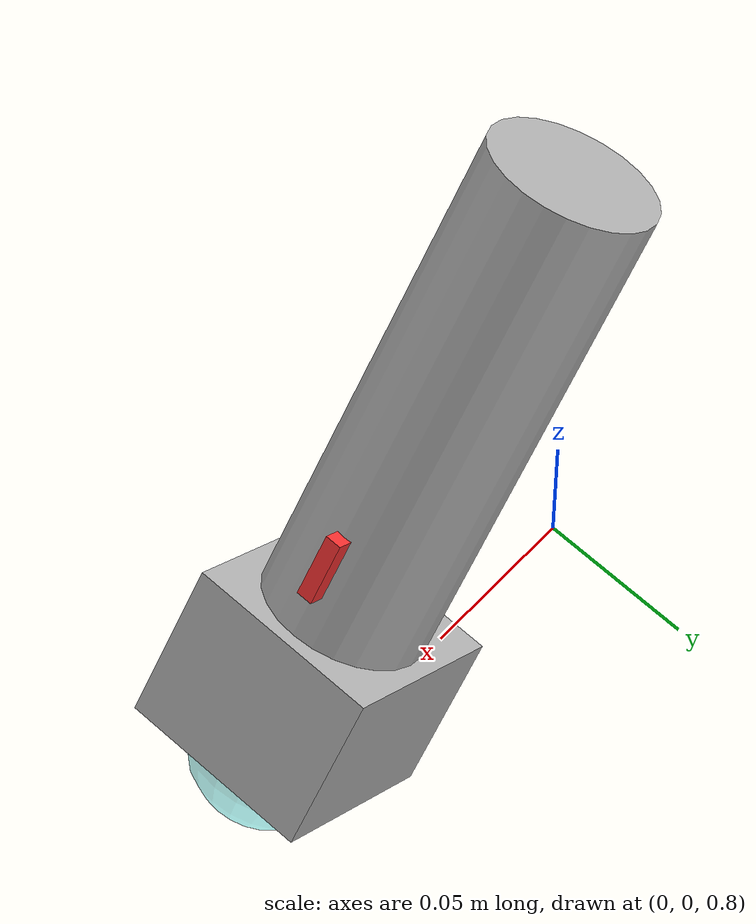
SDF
<?xml version="1.0"?>
<sdf version='1.6'>
  <world name='led_plugin_demo'>
    <include>
      <uri>model://ground_plane</uri>
    </include>

    <model name='light_model'>
      <static>1</static>
      <pose>0 0 1 0 2.5 0</pose>
      <link name='handle'>
        <pose>0 0 0.075 0 0 0</pose>
        <visual name='visual'>
          <geometry>
            <cylinder>
              <radius>0.025</radius>
              <length>0.15</length>
            </cylinder>
          </geometry>
        </visual>
        <light name='button' type='point'>
          <pose>-0.025 0 0.05 0 0 0</pose>
          <attenuation>
            <range>0.20</range>
            <linear>0.10</linear>
          </attenuation>
          <diffuse>1 0.2 0.2 1</diffuse>
          <specular>1 1 1 1</specular>
        </light>
        <visual name='button'>
          <pose>-0.025 0 0.05 0 0 0</pose>
          <geometry>
            <box>
              <size>0.01 0.005 0.02</size>
            </box>
          </geometry>
          <material>
            <ambient>1 0.2 0.2 1</ambient>
            <diffuse>1 0.2 0.2 1</diffuse>
            <specular>1 1 1 1</specular>
            <emissive>1 0.2 0.2 1</emissive>
          </material>
        </visual>
      </link>
      <link name='head'>
        <pose>0 0 0.175 0 0 0</pose>
        <visual name='visual'>
          <geometry>
            <box>
              <size>0.06 0.06 0.05</size>
            </box>
          </geometry>
        </visual>
      </link>
      <link name='light_source'>
        <pose>0 0 0.20 0 0 0</pose>
        <light name='lamp' type='spot'>
          <pose>0 0 0.0 0 3.14159 0</pose>
          <attenuation>
            <range>30</range>
            <linear>0.05</linear>
          </attenuation>
          <diffuse>0.5 1 1 1</diffuse>
          <specular>1 1 1 1</specular>
          <spot>
            <inner_angle>0.3</inner_angle>
            <outer_angle>0.35</outer_angle>
            <falloff>1</falloff>
          </spot>
          <direction>0 0 -1</direction>
        </light>
        <visual name='lamp'>
          <geometry>
            <sphere>
              <radius>0.025</radius>
            </sphere>
          </geometry>
          <transparency>0.4</transparency>
          <material>
            <ambient>0.5 1 1 1</ambient>
            <diffuse>0.5 1 1 1</diffuse>
            <specular>1 1 1 1</specular>
            <emissive>0.5 1 1 1</emissive>
          </material>
        </visual>
      </link>
      <joint name='joint1' type='fixed'>
        <parent>handle</parent>
        <child>head</child>
      </joint>
      <joint name='joint2' type='fixed'>
        <parent>head</parent>
        <child>light_source</child>
      </joint>

      <plugin name='light_control' filename='libLedPlugin.so'>
        <enable>true</enable>
        <light>
          <id>light_source/lamp</id>
          <duration>0.3</duration>
          <interval>0.4</interval>
          <enable>true</enable>
        </light>
        <light>
          <id>handle/button</id>
          <block>
            <duration>0.5</duration>
            <interval>0</interval>
            <color>1 1 0</color>
          </block>
          <block>
            <duration>0.5</duration>
            <interval>0</interval>
            <color>0 1 1</color>
          </block>
          <block>
            <duration>0.5</duration>
            <interval>0</interval>
            <color>1 0 1</color>
          </block>
          <enable>true</enable>
        </light>
      </plugin>

    </model>
    <gravity>0 0 -9.8</gravity>
  </world>
</sdf>
